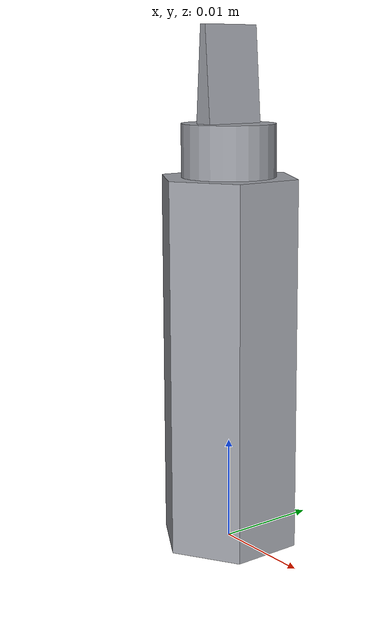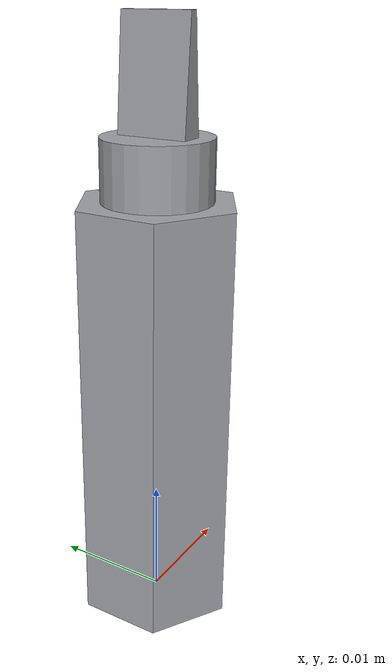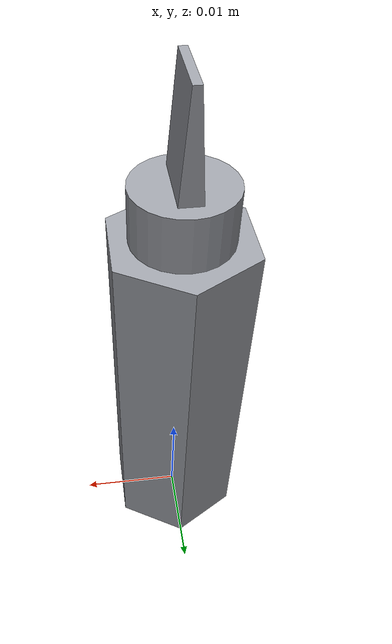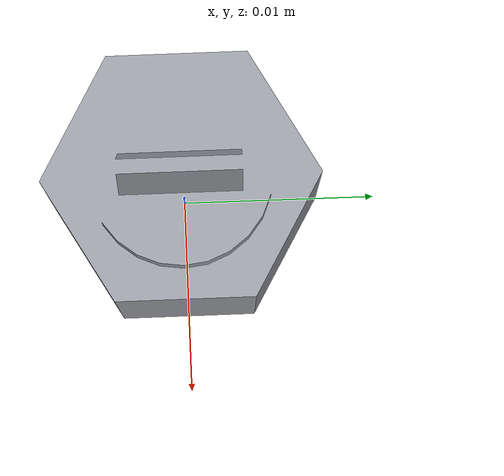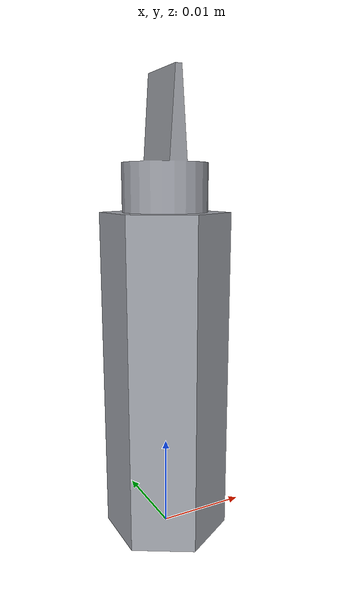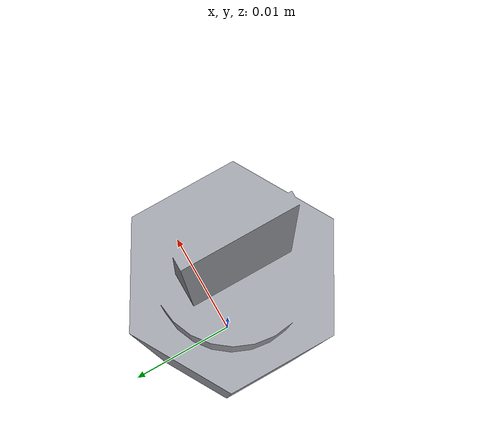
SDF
<?xml version="1.0"?>
<sdf version="1.9">
  <model name="screwdriver_bit_sl3">
    <link name="link">
      <inertial>
        <pose>0 0 0.0250 0 0 0</pose>
        <mass>0.042</mass>
        <inertia><ixx>9.254e-06</ixx><iyy>9.254e-06</iyy><izz>1.008e-06</izz><ixy>0</ixy><ixz>0</ixz><iyz>0</iyz></inertia>
      </inertial>
      <collision name="shank_0">
        <pose>0 0 0.018 0 0 0.000000</pose>
        <geometry><box><size>0.012 0.006928 0.036</size></box></geometry>
        <surface><friction><ode><mu>0.8</mu><mu2>0.8</mu2></ode></friction></surface>
      </collision>
      <collision name="shank_1">
        <pose>0 0 0.018 0 0 1.047198</pose>
        <geometry><box><size>0.012 0.006928 0.036</size></box></geometry>
        <surface><friction><ode><mu>0.8</mu><mu2>0.8</mu2></ode></friction></surface>
      </collision>
      <collision name="shank_2">
        <pose>0 0 0.018 0 0 2.094395</pose>
        <geometry><box><size>0.012 0.006928 0.036</size></box></geometry>
        <surface><friction><ode><mu>0.8</mu><mu2>0.8</mu2></ode></friction></surface>
      </collision>
      <collision name="tip">
        <pose>0 0 0.043 0 0 0</pose>
        <geometry><cylinder><radius>0.0045</radius><length>0.014000000000000005</length></cylinder></geometry>
        <surface><friction><ode><mu>0.8</mu><mu2>0.8</mu2></ode></friction></surface>
      </collision>
      <visual name="visual">
        <geometry><mesh><uri>model://screwdriver_bit_sl3/meshes/bit_sl3.stl</uri></mesh></geometry>
        <material>
          <ambient>0.45 0.46 0.48 1</ambient>
          <diffuse>0.62 0.63 0.66 1</diffuse>
          <specular>0.8 0.8 0.8 1</specular>
        </material>
      </visual>
    </link>
  </model>
</sdf>
